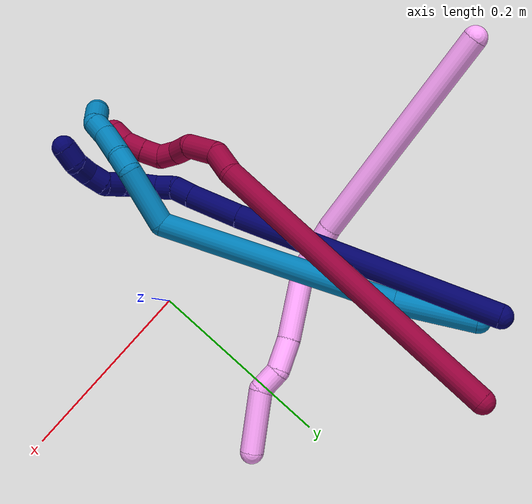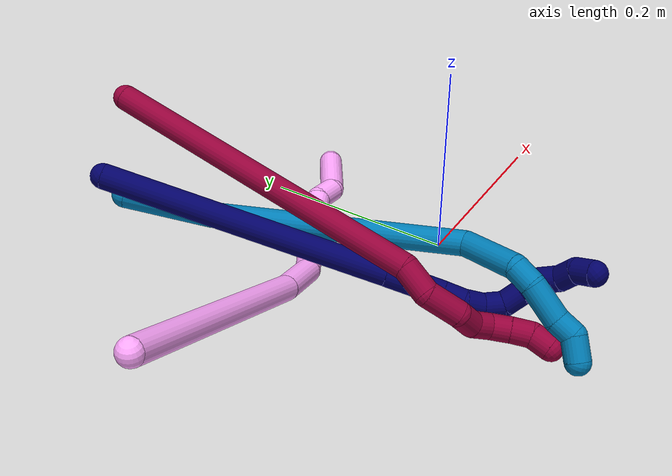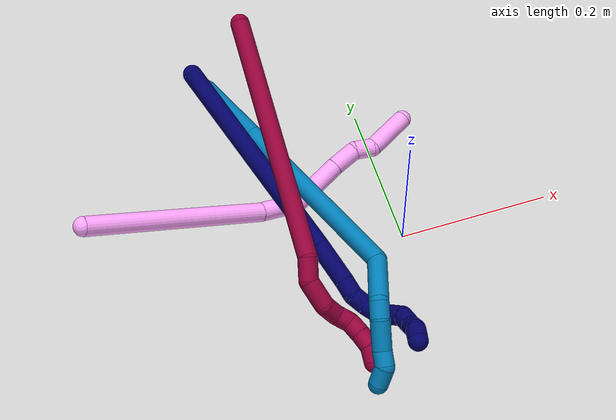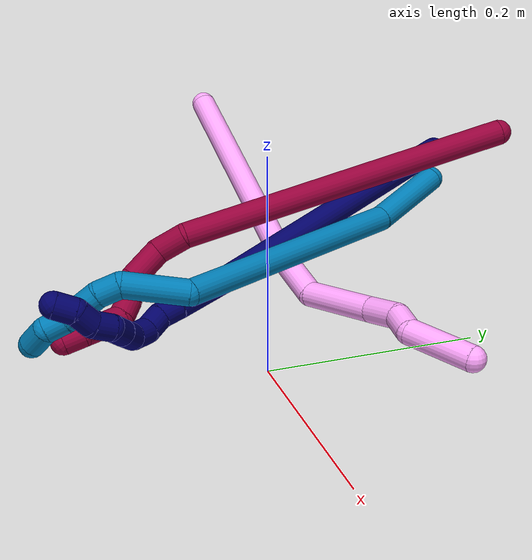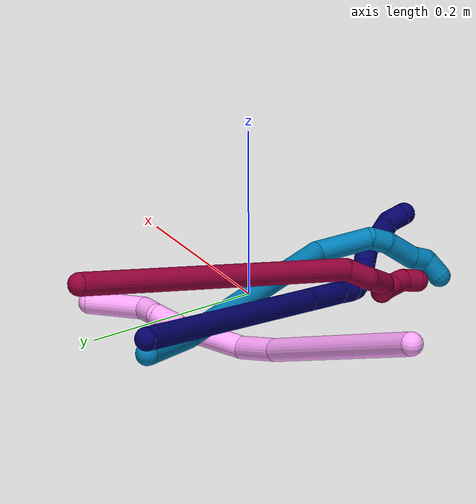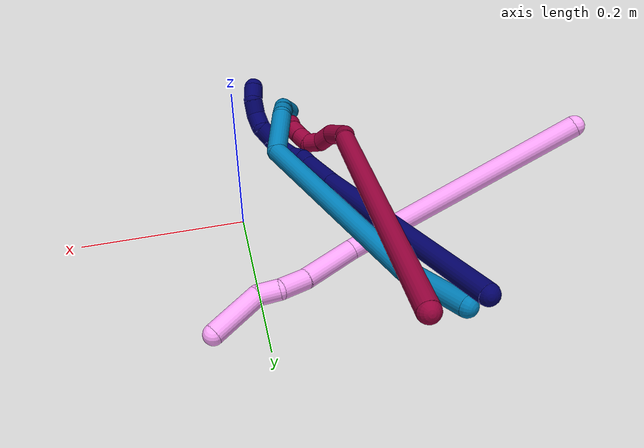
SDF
<sdf version="1.7">
 <world name="default">
  <model name="4">
   <static>0</static>
   <link name="4">
    <collision name="collision-cylinder-e_1_1_4">
     <pose>0.074689 0.077405 0.055965 -0.94479 0.663632 -0.348551</pose>
     <geometry><cylinder><radius>0.0125</radius><length>0.242504</length></cylinder></geometry>
     <surface>
      <friction><ode><mu>1.16</mu><mu2>1.16</mu2><slip1>0</slip1><slip2>0</slip2></ode></friction>
      <contact><ode><kp>1e+06</kp><kd>1</kd><max_vel>0</max_vel><min_depth>0.001</min_depth></ode></contact>
     </surface>
    </collision>
    <visual name="visual-cylinder-e_1_1_4">
     <pose>0.074689 0.077405 0.055965 -0.94479 0.663632 -0.348551</pose>
     <geometry><cylinder><radius>0.0125</radius><length>0.242504</length></cylinder></geometry>
     <material><ambient>1 0.65098 0.996078 1</ambient></material>
    </visual>
    <collision name="collision-cylinder-e_2_4_5">
     <pose>0.169036 0.171226 0.1219 -1.02501 0.797028 -0.465226</pose>
     <geometry><cylinder><radius>0.0125</radius><length>0.054966</length></cylinder></geometry>
     <surface>
      <friction><ode><mu>1.16</mu><mu2>1.16</mu2><slip1>0</slip1><slip2>0</slip2></ode></friction>
      <contact><ode><kp>1e+06</kp><kd>1</kd><max_vel>0</max_vel><min_depth>0.001</min_depth></ode></contact>
     </surface>
    </collision>
    <visual name="visual-cylinder-e_2_4_5">
     <pose>0.169036 0.171226 0.1219 -1.02501 0.797028 -0.465226</pose>
     <geometry><cylinder><radius>0.0125</radius><length>0.054966</length></cylinder></geometry>
     <material><ambient>1 0.65098 0.996078 1</ambient></material>
    </visual>
    <collision name="collision-cylinder-e_3_5_6">
     <pose>0.223466 0.200692 0.130414 -1.68186 1.20971 -1.31571</pose>
     <geometry><cylinder><radius>0.0125</radius><length>0.074337</length></cylinder></geometry>
     <surface>
      <friction><ode><mu>1.16</mu><mu2>1.16</mu2><slip1>0</slip1><slip2>0</slip2></ode></friction>
      <contact><ode><kp>1e+06</kp><kd>1</kd><max_vel>0</max_vel><min_depth>0.001</min_depth></ode></contact>
     </surface>
    </collision>
    <visual name="visual-cylinder-e_3_5_6">
     <pose>0.223466 0.200692 0.130414 -1.68186 1.20971 -1.31571</pose>
     <geometry><cylinder><radius>0.0125</radius><length>0.074337</length></cylinder></geometry>
     <material><ambient>1 0.65098 0.996078 1</ambient></material>
    </visual>
    <collision name="collision-cylinder-e_4_6_7">
     <pose>0.27349 0.221938 0.126818 -1.82628 1.06387 -1.30224</pose>
     <geometry><cylinder><radius>0.0125</radius><length>0.034894</length></cylinder></geometry>
     <surface>
      <friction><ode><mu>1.16</mu><mu2>1.16</mu2><slip1>0</slip1><slip2>0</slip2></ode></friction>
      <contact><ode><kp>1e+06</kp><kd>1</kd><max_vel>0</max_vel><min_depth>0.001</min_depth></ode></contact>
     </surface>
    </collision>
    <visual name="visual-cylinder-e_4_6_7">
     <pose>0.27349 0.221938 0.126818 -1.82628 1.06387 -1.30224</pose>
     <geometry><cylinder><radius>0.0125</radius><length>0.034894</length></cylinder></geometry>
     <material><ambient>1 0.65098 0.996078 1</ambient></material>
    </visual>
    <collision name="collision-cylinder-e_5_7_8">
     <pose>0.296792 0.240238 0.127063 -1.33891 0.659407 -0.528918</pose>
     <geometry><cylinder><radius>0.0125</radius><length>0.026275</length></cylinder></geometry>
     <surface>
      <friction><ode><mu>1.16</mu><mu2>1.16</mu2><slip1>0</slip1><slip2>0</slip2></ode></friction>
      <contact><ode><kp>1e+06</kp><kd>1</kd><max_vel>0</max_vel><min_depth>0.001</min_depth></ode></contact>
     </surface>
    </collision>
    <visual name="visual-cylinder-e_5_7_8">
     <pose>0.296792 0.240238 0.127063 -1.33891 0.659407 -0.528918</pose>
     <geometry><cylinder><radius>0.0125</radius><length>0.026275</length></cylinder></geometry>
     <material><ambient>1 0.65098 0.996078 1</ambient></material>
    </visual>
    <collision name="collision-cylinder-e_6_8_2">
     <pose>0.336635 0.259761 0.134297 -1.09538 1.24922 -0.828502</pose>
     <geometry><cylinder><radius>0.0125</radius><length>0.067024</length></cylinder></geometry>
     <surface>
      <friction><ode><mu>1.16</mu><mu2>1.16</mu2><slip1>0</slip1><slip2>0</slip2></ode></friction>
      <contact><ode><kp>1e+06</kp><kd>1</kd><max_vel>0</max_vel><min_depth>0.001</min_depth></ode></contact>
     </surface>
    </collision>
    <visual name="visual-cylinder-e_6_8_2">
     <pose>0.336635 0.259761 0.134297 -1.09538 1.24922 -0.828502</pose>
     <geometry><cylinder><radius>0.0125</radius><length>0.067024</length></cylinder></geometry>
     <material><ambient>1 0.65098 0.996078 1</ambient></material>
    </visual>
    <collision name="collision-sphere-2">
     <pose>0.368429 0.269179 0.139146 0 -0 0</pose>
     <geometry><sphere><radius>0.0125</radius></sphere></geometry>
     <surface>
      <friction><ode><mu>1.16</mu><mu2>1.16</mu2><slip1>0</slip1><slip2>0</slip2></ode></friction>
      <contact><ode><kp>1e+06</kp><kd>1</kd><max_vel>0</max_vel><min_depth>0.001</min_depth></ode></contact>
     </surface>
    </collision>
    <visual name="visual-sphere-2">
     <pose>0.368429 0.269179 0.139146 0 -0 0</pose>
     <geometry><sphere><radius>0.0125</radius></sphere></geometry>
     <material><ambient>1 0.65098 0.996078 1</ambient></material>
    </visual>
    <collision name="collision-sphere-4">
     <pose>0.149378 0.15481 0.11193 0 -0 0</pose>
     <geometry><sphere><radius>0.0125</radius></sphere></geometry>
     <surface>
      <friction><ode><mu>1.16</mu><mu2>1.16</mu2><slip1>0</slip1><slip2>0</slip2></ode></friction>
      <contact><ode><kp>1e+06</kp><kd>1</kd><max_vel>0</max_vel><min_depth>0.001</min_depth></ode></contact>
     </surface>
    </collision>
    <visual name="visual-sphere-4">
     <pose>0.149378 0.15481 0.11193 0 -0 0</pose>
     <geometry><sphere><radius>0.0125</radius></sphere></geometry>
     <material><ambient>1 0.65098 0.996078 1</ambient></material>
    </visual>
    <collision name="collision-sphere-1">
     <geometry><sphere><radius>0.0125</radius></sphere></geometry>
     <surface>
      <friction><ode><mu>1.16</mu><mu2>1.16</mu2><slip1>0</slip1><slip2>0</slip2></ode></friction>
      <contact><ode><kp>1e+06</kp><kd>1</kd><max_vel>0</max_vel><min_depth>0.001</min_depth></ode></contact>
     </surface>
    </collision>
    <visual name="visual-sphere-1">
     <geometry><sphere><radius>0.0125</radius></sphere></geometry>
     <material><ambient>1 0.65098 0.996078 1</ambient></material>
    </visual>
    <collision name="collision-sphere-8">
     <pose>0.30484 0.250344 0.129449 0 -0 0</pose>
     <geometry><sphere><radius>0.0125</radius></sphere></geometry>
     <surface>
      <friction><ode><mu>1.16</mu><mu2>1.16</mu2><slip1>0</slip1><slip2>0</slip2></ode></friction>
      <contact><ode><kp>1e+06</kp><kd>1</kd><max_vel>0</max_vel><min_depth>0.001</min_depth></ode></contact>
     </surface>
    </collision>
    <visual name="visual-sphere-8">
     <pose>0.30484 0.250344 0.129449 0 -0 0</pose>
     <geometry><sphere><radius>0.0125</radius></sphere></geometry>
     <material><ambient>1 0.65098 0.996078 1</ambient></material>
    </visual>
    <collision name="collision-sphere-5">
     <pose>0.188694 0.187642 0.131869 0 -0 0</pose>
     <geometry><sphere><radius>0.0125</radius></sphere></geometry>
     <surface>
      <friction><ode><mu>1.16</mu><mu2>1.16</mu2><slip1>0</slip1><slip2>0</slip2></ode></friction>
      <contact><ode><kp>1e+06</kp><kd>1</kd><max_vel>0</max_vel><min_depth>0.001</min_depth></ode></contact>
     </surface>
    </collision>
    <visual name="visual-sphere-5">
     <pose>0.188694 0.187642 0.131869 0 -0 0</pose>
     <geometry><sphere><radius>0.0125</radius></sphere></geometry>
     <material><ambient>1 0.65098 0.996078 1</ambient></material>
    </visual>
    <collision name="collision-sphere-6">
     <pose>0.258238 0.213742 0.128958 0 -0 0</pose>
     <geometry><sphere><radius>0.0125</radius></sphere></geometry>
     <surface>
      <friction><ode><mu>1.16</mu><mu2>1.16</mu2><slip1>0</slip1><slip2>0</slip2></ode></friction>
      <contact><ode><kp>1e+06</kp><kd>1</kd><max_vel>0</max_vel><min_depth>0.001</min_depth></ode></contact>
     </surface>
    </collision>
    <visual name="visual-sphere-6">
     <pose>0.258238 0.213742 0.128958 0 -0 0</pose>
     <geometry><sphere><radius>0.0125</radius></sphere></geometry>
     <material><ambient>1 0.65098 0.996078 1</ambient></material>
    </visual>
    <collision name="collision-sphere-7">
     <pose>0.288743 0.230133 0.124677 0 -0 0</pose>
     <geometry><sphere><radius>0.0125</radius></sphere></geometry>
     <surface>
      <friction><ode><mu>1.16</mu><mu2>1.16</mu2><slip1>0</slip1><slip2>0</slip2></ode></friction>
      <contact><ode><kp>1e+06</kp><kd>1</kd><max_vel>0</max_vel><min_depth>0.001</min_depth></ode></contact>
     </surface>
    </collision>
    <visual name="visual-sphere-7">
     <pose>0.288743 0.230133 0.124677 0 -0 0</pose>
     <geometry><sphere><radius>0.0125</radius></sphere></geometry>
     <material><ambient>1 0.65098 0.996078 1</ambient></material>
    </visual>
    <inertial>
     <pose>0.167839 0.149136 0.093463 0 -0 0</pose>
     <mass>0.5</mass>
     <inertia>
      <ixx>0.000588</ixx>
      <ixy>0</ixy>
      <ixz>0</ixz>
      <iyy>0.00061</iyy>
      <iyz>0</iyz>
      <izz>-0.001605</izz>
     </inertia>
    </inertial>
   </link>
   <pose>-0.388311 0.057595 0.132475 3.11533 -0.030932 0.881464</pose>
  </model>
  <model name="7">
   <static>0</static>
   <link name="7">
    <collision name="collision-cylinder-e_1_1_4">
     <pose>0.05725 -0.05577 -0.116828 2.69621 0.416375 1.50138</pose>
     <geometry><cylinder><radius>0.0125</radius><length>0.283101</length></cylinder></geometry>
     <surface>
      <friction><ode><mu>1.16</mu><mu2>1.16</mu2><slip1>0</slip1><slip2>0</slip2></ode></friction>
      <contact><ode><kp>1e+06</kp><kd>1</kd><max_vel>0</max_vel><min_depth>0.001</min_depth></ode></contact>
     </surface>
    </collision>
    <visual name="visual-cylinder-e_1_1_4">
     <pose>0.05725 -0.05577 -0.116828 2.69621 0.416375 1.50138</pose>
     <geometry><cylinder><radius>0.0125</radius><length>0.283101</length></cylinder></geometry>
     <material><ambient>0.003922 0 0.403922 1</ambient></material>
    </visual>
    <collision name="collision-cylinder-e_2_4_5">
     <pose>0.124844 -0.123163 -0.256998 2.6796 0.377647 1.36465</pose>
     <geometry><cylinder><radius>0.0125</radius><length>0.056105</length></cylinder></geometry>
     <surface>
      <friction><ode><mu>1.16</mu><mu2>1.16</mu2><slip1>0</slip1><slip2>0</slip2></ode></friction>
      <contact><ode><kp>1e+06</kp><kd>1</kd><max_vel>0</max_vel><min_depth>0.001</min_depth></ode></contact>
     </surface>
    </collision>
    <visual name="visual-cylinder-e_2_4_5">
     <pose>0.124844 -0.123163 -0.256998 2.6796 0.377647 1.36465</pose>
     <geometry><cylinder><radius>0.0125</radius><length>0.056105</length></cylinder></geometry>
     <material><ambient>0.003922 0 0.403922 1</ambient></material>
    </visual>
    <collision name="collision-cylinder-e_3_5_6">
     <pose>0.138445 -0.139064 -0.289193 2.69143 0.319867 1.22752</pose>
     <geometry><cylinder><radius>0.0125</radius><length>0.020717</length></cylinder></geometry>
     <surface>
      <friction><ode><mu>1.16</mu><mu2>1.16</mu2><slip1>0</slip1><slip2>0</slip2></ode></friction>
      <contact><ode><kp>1e+06</kp><kd>1</kd><max_vel>0</max_vel><min_depth>0.001</min_depth></ode></contact>
     </surface>
    </collision>
    <visual name="visual-cylinder-e_3_5_6">
     <pose>0.138445 -0.139064 -0.289193 2.69143 0.319867 1.22752</pose>
     <geometry><cylinder><radius>0.0125</radius><length>0.020717</length></cylinder></geometry>
     <material><ambient>0.003922 0 0.403922 1</ambient></material>
    </visual>
    <collision name="collision-cylinder-e_4_6_7">
     <pose>0.148319 -0.145993 -0.305114 2.7828 0.719785 2.24339</pose>
     <geometry><cylinder><radius>0.0125</radius><length>0.020076</length></cylinder></geometry>
     <surface>
      <friction><ode><mu>1.16</mu><mu2>1.16</mu2><slip1>0</slip1><slip2>0</slip2></ode></friction>
      <contact><ode><kp>1e+06</kp><kd>1</kd><max_vel>0</max_vel><min_depth>0.001</min_depth></ode></contact>
     </surface>
    </collision>
    <visual name="visual-cylinder-e_4_6_7">
     <pose>0.148319 -0.145993 -0.305114 2.7828 0.719785 2.24339</pose>
     <geometry><cylinder><radius>0.0125</radius><length>0.020076</length></cylinder></geometry>
     <material><ambient>0.003922 0 0.403922 1</ambient></material>
    </visual>
    <collision name="collision-cylinder-e_5_7_8">
     <pose>0.16066 -0.154928 -0.31745 2.26849 0.609314 1.18605</pose>
     <geometry><cylinder><radius>0.0125</radius><length>0.020001</length></cylinder></geometry>
     <surface>
      <friction><ode><mu>1.16</mu><mu2>1.16</mu2><slip1>0</slip1><slip2>0</slip2></ode></friction>
      <contact><ode><kp>1e+06</kp><kd>1</kd><max_vel>0</max_vel><min_depth>0.001</min_depth></ode></contact>
     </surface>
    </collision>
    <visual name="visual-cylinder-e_5_7_8">
     <pose>0.16066 -0.154928 -0.31745 2.26849 0.609314 1.18605</pose>
     <geometry><cylinder><radius>0.0125</radius><length>0.020001</length></cylinder></geometry>
     <material><ambient>0.003922 0 0.403922 1</ambient></material>
    </visual>
    <collision name="collision-cylinder-e_6_8_9">
     <pose>0.171007 -0.170067 -0.323184 1.62338 0.480707 0.505605</pose>
     <geometry><cylinder><radius>0.0125</radius><length>0.02</length></cylinder></geometry>
     <surface>
      <friction><ode><mu>1.16</mu><mu2>1.16</mu2><slip1>0</slip1><slip2>0</slip2></ode></friction>
      <contact><ode><kp>1e+06</kp><kd>1</kd><max_vel>0</max_vel><min_depth>0.001</min_depth></ode></contact>
     </surface>
    </collision>
    <visual name="visual-cylinder-e_6_8_9">
     <pose>0.171007 -0.170067 -0.323184 1.62338 0.480707 0.505605</pose>
     <geometry><cylinder><radius>0.0125</radius><length>0.02</length></cylinder></geometry>
     <material><ambient>0.003922 0 0.403922 1</ambient></material>
    </visual>
    <collision name="collision-cylinder-e_7_9_10">
     <pose>0.179976 -0.187921 -0.324018 1.61165 0.449453 0.467538</pose>
     <geometry><cylinder><radius>0.0125</radius><length>0.02</length></cylinder></geometry>
     <surface>
      <friction><ode><mu>1.16</mu><mu2>1.16</mu2><slip1>0</slip1><slip2>0</slip2></ode></friction>
      <contact><ode><kp>1e+06</kp><kd>1</kd><max_vel>0</max_vel><min_depth>0.001</min_depth></ode></contact>
     </surface>
    </collision>
    <visual name="visual-cylinder-e_7_9_10">
     <pose>0.179976 -0.187921 -0.324018 1.61165 0.449453 0.467538</pose>
     <geometry><cylinder><radius>0.0125</radius><length>0.02</length></cylinder></geometry>
     <material><ambient>0.003922 0 0.403922 1</ambient></material>
    </visual>
    <collision name="collision-cylinder-e_8_10_11">
     <pose>0.185414 -0.205663 -0.329116 2.06672 0.109567 0.18352</pose>
     <geometry><cylinder><radius>0.0125</radius><length>0.02</length></cylinder></geometry>
     <surface>
      <friction><ode><mu>1.16</mu><mu2>1.16</mu2><slip1>0</slip1><slip2>0</slip2></ode></friction>
      <contact><ode><kp>1e+06</kp><kd>1</kd><max_vel>0</max_vel><min_depth>0.001</min_depth></ode></contact>
     </surface>
    </collision>
    <visual name="visual-cylinder-e_8_10_11">
     <pose>0.185414 -0.205663 -0.329116 2.06672 0.109567 0.18352</pose>
     <geometry><cylinder><radius>0.0125</radius><length>0.02</length></cylinder></geometry>
     <material><ambient>0.003922 0 0.403922 1</ambient></material>
    </visual>
    <collision name="collision-cylinder-e_9_11_12">
     <pose>0.18553 -0.224295 -0.33496 1.68301 -0.097867 -0.109493</pose>
     <geometry><cylinder><radius>0.0125</radius><length>0.02</length></cylinder></geometry>
     <surface>
      <friction><ode><mu>1.16</mu><mu2>1.16</mu2><slip1>0</slip1><slip2>0</slip2></ode></friction>
      <contact><ode><kp>1e+06</kp><kd>1</kd><max_vel>0</max_vel><min_depth>0.001</min_depth></ode></contact>
     </surface>
    </collision>
    <visual name="visual-cylinder-e_9_11_12">
     <pose>0.18553 -0.224295 -0.33496 1.68301 -0.097867 -0.109493</pose>
     <geometry><cylinder><radius>0.0125</radius><length>0.02</length></cylinder></geometry>
     <material><ambient>0.003922 0 0.403922 1</ambient></material>
    </visual>
    <collision name="collision-cylinder-e_10_12_2">
     <pose>0.182075 -0.242117 -0.341636 2.18221 -0.250482 -0.474894</pose>
     <geometry><cylinder><radius>0.0125</radius><length>0.02</length></cylinder></geometry>
     <surface>
      <friction><ode><mu>1.16</mu><mu2>1.16</mu2><slip1>0</slip1><slip2>0</slip2></ode></friction>
      <contact><ode><kp>1e+06</kp><kd>1</kd><max_vel>0</max_vel><min_depth>0.001</min_depth></ode></contact>
     </surface>
    </collision>
    <visual name="visual-cylinder-e_10_12_2">
     <pose>0.182075 -0.242117 -0.341636 2.18221 -0.250482 -0.474894</pose>
     <geometry><cylinder><radius>0.0125</radius><length>0.02</length></cylinder></geometry>
     <material><ambient>0.003922 0 0.403922 1</ambient></material>
    </visual>
    <collision name="collision-sphere-2">
     <pose>0.179596 -0.25005 -0.347197 0 -0 0</pose>
     <geometry><sphere><radius>0.0125</radius></sphere></geometry>
     <surface>
      <friction><ode><mu>1.16</mu><mu2>1.16</mu2><slip1>0</slip1><slip2>0</slip2></ode></friction>
      <contact><ode><kp>1e+06</kp><kd>1</kd><max_vel>0</max_vel><min_depth>0.001</min_depth></ode></contact>
     </surface>
    </collision>
    <visual name="visual-sphere-2">
     <pose>0.179596 -0.25005 -0.347197 0 -0 0</pose>
     <geometry><sphere><radius>0.0125</radius></sphere></geometry>
     <material><ambient>0.003922 0 0.403922 1</ambient></material>
    </visual>
    <collision name="collision-sphere-12">
     <pose>0.184553 -0.234185 -0.336075 0 -0 0</pose>
     <geometry><sphere><radius>0.0125</radius></sphere></geometry>
     <surface>
      <friction><ode><mu>1.16</mu><mu2>1.16</mu2><slip1>0</slip1><slip2>0</slip2></ode></friction>
      <contact><ode><kp>1e+06</kp><kd>1</kd><max_vel>0</max_vel><min_depth>0.001</min_depth></ode></contact>
     </surface>
    </collision>
    <visual name="visual-sphere-12">
     <pose>0.184553 -0.234185 -0.336075 0 -0 0</pose>
     <geometry><sphere><radius>0.0125</radius></sphere></geometry>
     <material><ambient>0.003922 0 0.403922 1</ambient></material>
    </visual>
    <collision name="collision-sphere-11">
     <pose>0.186508 -0.214405 -0.333846 0 -0 0</pose>
     <geometry><sphere><radius>0.0125</radius></sphere></geometry>
     <surface>
      <friction><ode><mu>1.16</mu><mu2>1.16</mu2><slip1>0</slip1><slip2>0</slip2></ode></friction>
      <contact><ode><kp>1e+06</kp><kd>1</kd><max_vel>0</max_vel><min_depth>0.001</min_depth></ode></contact>
     </surface>
    </collision>
    <visual name="visual-sphere-11">
     <pose>0.186508 -0.214405 -0.333846 0 -0 0</pose>
     <geometry><sphere><radius>0.0125</radius></sphere></geometry>
     <material><ambient>0.003922 0 0.403922 1</ambient></material>
    </visual>
    <collision name="collision-sphere-10">
     <pose>0.184321 -0.19692 -0.324386 0 -0 0</pose>
     <geometry><sphere><radius>0.0125</radius></sphere></geometry>
     <surface>
      <friction><ode><mu>1.16</mu><mu2>1.16</mu2><slip1>0</slip1><slip2>0</slip2></ode></friction>
      <contact><ode><kp>1e+06</kp><kd>1</kd><max_vel>0</max_vel><min_depth>0.001</min_depth></ode></contact>
     </surface>
    </collision>
    <visual name="visual-sphere-10">
     <pose>0.184321 -0.19692 -0.324386 0 -0 0</pose>
     <geometry><sphere><radius>0.0125</radius></sphere></geometry>
     <material><ambient>0.003922 0 0.403922 1</ambient></material>
    </visual>
    <collision name="collision-sphere-9">
     <pose>0.175631 -0.178922 -0.32365 0 -0 0</pose>
     <geometry><sphere><radius>0.0125</radius></sphere></geometry>
     <surface>
      <friction><ode><mu>1.16</mu><mu2>1.16</mu2><slip1>0</slip1><slip2>0</slip2></ode></friction>
      <contact><ode><kp>1e+06</kp><kd>1</kd><max_vel>0</max_vel><min_depth>0.001</min_depth></ode></contact>
     </surface>
    </collision>
    <visual name="visual-sphere-9">
     <pose>0.175631 -0.178922 -0.32365 0 -0 0</pose>
     <geometry><sphere><radius>0.0125</radius></sphere></geometry>
     <material><ambient>0.003922 0 0.403922 1</ambient></material>
    </visual>
    <collision name="collision-sphere-4">
     <pose>0.1145 -0.11154 -0.233655 0 -0 0</pose>
     <geometry><sphere><radius>0.0125</radius></sphere></geometry>
     <surface>
      <friction><ode><mu>1.16</mu><mu2>1.16</mu2><slip1>0</slip1><slip2>0</slip2></ode></friction>
      <contact><ode><kp>1e+06</kp><kd>1</kd><max_vel>0</max_vel><min_depth>0.001</min_depth></ode></contact>
     </surface>
    </collision>
    <visual name="visual-sphere-4">
     <pose>0.1145 -0.11154 -0.233655 0 -0 0</pose>
     <geometry><sphere><radius>0.0125</radius></sphere></geometry>
     <material><ambient>0.003922 0 0.403922 1</ambient></material>
    </visual>
    <collision name="collision-sphere-1">
     <geometry><sphere><radius>0.0125</radius></sphere></geometry>
     <surface>
      <friction><ode><mu>1.16</mu><mu2>1.16</mu2><slip1>0</slip1><slip2>0</slip2></ode></friction>
      <contact><ode><kp>1e+06</kp><kd>1</kd><max_vel>0</max_vel><min_depth>0.001</min_depth></ode></contact>
     </surface>
    </collision>
    <visual name="visual-sphere-1">
     <geometry><sphere><radius>0.0125</radius></sphere></geometry>
     <material><ambient>0.003922 0 0.403922 1</ambient></material>
    </visual>
    <collision name="collision-sphere-8">
     <pose>0.166383 -0.161213 -0.322718 0 -0 0</pose>
     <geometry><sphere><radius>0.0125</radius></sphere></geometry>
     <surface>
      <friction><ode><mu>1.16</mu><mu2>1.16</mu2><slip1>0</slip1><slip2>0</slip2></ode></friction>
      <contact><ode><kp>1e+06</kp><kd>1</kd><max_vel>0</max_vel><min_depth>0.001</min_depth></ode></contact>
     </surface>
    </collision>
    <visual name="visual-sphere-8">
     <pose>0.166383 -0.161213 -0.322718 0 -0 0</pose>
     <geometry><sphere><radius>0.0125</radius></sphere></geometry>
     <material><ambient>0.003922 0 0.403922 1</ambient></material>
    </visual>
    <collision name="collision-sphere-5">
     <pose>0.135188 -0.134786 -0.28034 0 -0 0</pose>
     <geometry><sphere><radius>0.0125</radius></sphere></geometry>
     <surface>
      <friction><ode><mu>1.16</mu><mu2>1.16</mu2><slip1>0</slip1><slip2>0</slip2></ode></friction>
      <contact><ode><kp>1e+06</kp><kd>1</kd><max_vel>0</max_vel><min_depth>0.001</min_depth></ode></contact>
     </surface>
    </collision>
    <visual name="visual-sphere-5">
     <pose>0.135188 -0.134786 -0.28034 0 -0 0</pose>
     <geometry><sphere><radius>0.0125</radius></sphere></geometry>
     <material><ambient>0.003922 0 0.403922 1</ambient></material>
    </visual>
    <collision name="collision-sphere-6">
     <pose>0.141702 -0.143343 -0.298046 0 -0 0</pose>
     <geometry><sphere><radius>0.0125</radius></sphere></geometry>
     <surface>
      <friction><ode><mu>1.16</mu><mu2>1.16</mu2><slip1>0</slip1><slip2>0</slip2></ode></friction>
      <contact><ode><kp>1e+06</kp><kd>1</kd><max_vel>0</max_vel><min_depth>0.001</min_depth></ode></contact>
     </surface>
    </collision>
    <visual name="visual-sphere-6">
     <pose>0.141702 -0.143343 -0.298046 0 -0 0</pose>
     <geometry><sphere><radius>0.0125</radius></sphere></geometry>
     <material><ambient>0.003922 0 0.403922 1</ambient></material>
    </visual>
    <collision name="collision-sphere-7">
     <pose>0.154937 -0.148644 -0.312181 0 -0 0</pose>
     <geometry><sphere><radius>0.0125</radius></sphere></geometry>
     <surface>
      <friction><ode><mu>1.16</mu><mu2>1.16</mu2><slip1>0</slip1><slip2>0</slip2></ode></friction>
      <contact><ode><kp>1e+06</kp><kd>1</kd><max_vel>0</max_vel><min_depth>0.001</min_depth></ode></contact>
     </surface>
    </collision>
    <visual name="visual-sphere-7">
     <pose>0.154937 -0.148644 -0.312181 0 -0 0</pose>
     <geometry><sphere><radius>0.0125</radius></sphere></geometry>
     <material><ambient>0.003922 0 0.403922 1</ambient></material>
    </visual>
    <inertial>
     <pose>0.100702 -0.104421 -0.198034 0 -0 0</pose>
     <mass>0.5</mass>
     <inertia>
      <ixx>0.001899</ixx>
      <ixy>0</ixy>
      <ixz>0</ixz>
      <iyy>0.001946</iyy>
      <iyz>0</iyz>
      <izz>-4.1e-05</izz>
     </inertia>
    </inertial>
   </link>
   <pose>-0.207622 0.255254 0.113687 -0.939134 0.218856 -0.03137</pose>
  </model>
  <model name="8">
   <static>0</static>
   <link name="8">
    <collision name="collision-cylinder-e_1_1_4">
     <pose>-0.027391 -0.06868 -0.148016 2.70715 -0.166314 -0.722191</pose>
     <geometry><cylinder><radius>0.0125</radius><length>0.330914</length></cylinder></geometry>
     <surface>
      <friction><ode><mu>1.16</mu><mu2>1.16</mu2><slip1>0</slip1><slip2>0</slip2></ode></friction>
      <contact><ode><kp>1e+06</kp><kd>1</kd><max_vel>0</max_vel><min_depth>0.001</min_depth></ode></contact>
     </surface>
    </collision>
    <visual name="visual-cylinder-e_1_1_4">
     <pose>-0.027391 -0.06868 -0.148016 2.70715 -0.166314 -0.722191</pose>
     <geometry><cylinder><radius>0.0125</radius><length>0.330914</length></cylinder></geometry>
     <material><ambient>0.584314 0 0.227451 1</ambient></material>
    </visual>
    <collision name="collision-cylinder-e_2_4_5">
     <pose>-0.057906 -0.138242 -0.310696 3.08157 -0.209483 -2.5853</pose>
     <geometry><cylinder><radius>0.0125</radius><length>0.030037</length></cylinder></geometry>
     <surface>
      <friction><ode><mu>1.16</mu><mu2>1.16</mu2><slip1>0</slip1><slip2>0</slip2></ode></friction>
      <contact><ode><kp>1e+06</kp><kd>1</kd><max_vel>0</max_vel><min_depth>0.001</min_depth></ode></contact>
     </surface>
    </collision>
    <visual name="visual-cylinder-e_2_4_5">
     <pose>-0.057906 -0.138242 -0.310696 3.08157 -0.209483 -2.5853</pose>
     <geometry><cylinder><radius>0.0125</radius><length>0.030037</length></cylinder></geometry>
     <material><ambient>0.584314 0 0.227451 1</ambient></material>
    </visual>
    <collision name="collision-cylinder-e_3_5_6">
     <pose>-0.055715 -0.142911 -0.341961 2.91725 0.30251 1.8687</pose>
     <geometry><cylinder><radius>0.0125</radius><length>0.035675</length></cylinder></geometry>
     <surface>
      <friction><ode><mu>1.16</mu><mu2>1.16</mu2><slip1>0</slip1><slip2>0</slip2></ode></friction>
      <contact><ode><kp>1e+06</kp><kd>1</kd><max_vel>0</max_vel><min_depth>0.001</min_depth></ode></contact>
     </surface>
    </collision>
    <visual name="visual-cylinder-e_3_5_6">
     <pose>-0.055715 -0.142911 -0.341961 2.91725 0.30251 1.8687</pose>
     <geometry><cylinder><radius>0.0125</radius><length>0.035675</length></cylinder></geometry>
     <material><ambient>0.584314 0 0.227451 1</ambient></material>
    </visual>
    <collision name="collision-cylinder-e_4_6_7">
     <pose>-0.042489 -0.145341 -0.366978 -2.98155 0.748102 -2.73856</pose>
     <geometry><cylinder><radius>0.0125</radius><length>0.023262</length></cylinder></geometry>
     <surface>
      <friction><ode><mu>1.16</mu><mu2>1.16</mu2><slip1>0</slip1><slip2>0</slip2></ode></friction>
      <contact><ode><kp>1e+06</kp><kd>1</kd><max_vel>0</max_vel><min_depth>0.001</min_depth></ode></contact>
     </surface>
    </collision>
    <visual name="visual-cylinder-e_4_6_7">
     <pose>-0.042489 -0.145341 -0.366978 -2.98155 0.748102 -2.73856</pose>
     <geometry><cylinder><radius>0.0125</radius><length>0.023262</length></cylinder></geometry>
     <material><ambient>0.584314 0 0.227451 1</ambient></material>
    </visual>
    <collision name="collision-cylinder-e_5_7_8">
     <pose>-0.027705 -0.147273 -0.381923 2.67467 0.754402 2.06039</pose>
     <geometry><cylinder><radius>0.0125</radius><length>0.020066</length></cylinder></geometry>
     <surface>
      <friction><ode><mu>1.16</mu><mu2>1.16</mu2><slip1>0</slip1><slip2>0</slip2></ode></friction>
      <contact><ode><kp>1e+06</kp><kd>1</kd><max_vel>0</max_vel><min_depth>0.001</min_depth></ode></contact>
     </surface>
    </collision>
    <visual name="visual-cylinder-e_5_7_8">
     <pose>-0.027705 -0.147273 -0.381923 2.67467 0.754402 2.06039</pose>
     <geometry><cylinder><radius>0.0125</radius><length>0.020066</length></cylinder></geometry>
     <material><ambient>0.584314 0 0.227451 1</ambient></material>
    </visual>
    <collision name="collision-cylinder-e_6_8_9">
     <pose>-0.01922 -0.157047 -0.395912 2.42624 0.16187 0.427417</pose>
     <geometry><cylinder><radius>0.0125</radius><length>0.020031</length></cylinder></geometry>
     <surface>
      <friction><ode><mu>1.16</mu><mu2>1.16</mu2><slip1>0</slip1><slip2>0</slip2></ode></friction>
      <contact><ode><kp>1e+06</kp><kd>1</kd><max_vel>0</max_vel><min_depth>0.001</min_depth></ode></contact>
     </surface>
    </collision>
    <visual name="visual-cylinder-e_6_8_9">
     <pose>-0.01922 -0.157047 -0.395912 2.42624 0.16187 0.427417</pose>
     <geometry><cylinder><radius>0.0125</radius><length>0.020031</length></cylinder></geometry>
     <material><ambient>0.584314 0 0.227451 1</ambient></material>
    </visual>
    <collision name="collision-cylinder-e_7_9_10">
     <pose>-0.016648 -0.169732 -0.411161 2.46906 0.095912 0.272897</pose>
     <geometry><cylinder><radius>0.0125</radius><length>0.020003</length></cylinder></geometry>
     <surface>
      <friction><ode><mu>1.16</mu><mu2>1.16</mu2><slip1>0</slip1><slip2>0</slip2></ode></friction>
      <contact><ode><kp>1e+06</kp><kd>1</kd><max_vel>0</max_vel><min_depth>0.001</min_depth></ode></contact>
     </surface>
    </collision>
    <visual name="visual-cylinder-e_7_9_10">
     <pose>-0.016648 -0.169732 -0.411161 2.46906 0.095912 0.272897</pose>
     <geometry><cylinder><radius>0.0125</radius><length>0.020003</length></cylinder></geometry>
     <material><ambient>0.584314 0 0.227451 1</ambient></material>
    </visual>
    <collision name="collision-cylinder-e_8_10_2">
     <pose>-0.017304 -0.179267 -0.428244 2.79734 -0.161951 -0.873496</pose>
     <geometry><cylinder><radius>0.0125</radius><length>0.020012</length></cylinder></geometry>
     <surface>
      <friction><ode><mu>1.16</mu><mu2>1.16</mu2><slip1>0</slip1><slip2>0</slip2></ode></friction>
      <contact><ode><kp>1e+06</kp><kd>1</kd><max_vel>0</max_vel><min_depth>0.001</min_depth></ode></contact>
     </surface>
    </collision>
    <visual name="visual-cylinder-e_8_10_2">
     <pose>-0.017304 -0.179267 -0.428244 2.79734 -0.161951 -0.873496</pose>
     <geometry><cylinder><radius>0.0125</radius><length>0.020012</length></cylinder></geometry>
     <material><ambient>0.584314 0 0.227451 1</ambient></material>
    </visual>
    <collision name="collision-sphere-2">
     <pose>-0.018917 -0.182599 -0.43754 0 -0 0</pose>
     <geometry><sphere><radius>0.0125</radius></sphere></geometry>
     <surface>
      <friction><ode><mu>1.16</mu><mu2>1.16</mu2><slip1>0</slip1><slip2>0</slip2></ode></friction>
      <contact><ode><kp>1e+06</kp><kd>1</kd><max_vel>0</max_vel><min_depth>0.001</min_depth></ode></contact>
     </surface>
    </collision>
    <visual name="visual-sphere-2">
     <pose>-0.018917 -0.182599 -0.43754 0 -0 0</pose>
     <geometry><sphere><radius>0.0125</radius></sphere></geometry>
     <material><ambient>0.584314 0 0.227451 1</ambient></material>
    </visual>
    <collision name="collision-sphere-10">
     <pose>-0.01569 -0.175934 -0.418949 0 -0 0</pose>
     <geometry><sphere><radius>0.0125</radius></sphere></geometry>
     <surface>
      <friction><ode><mu>1.16</mu><mu2>1.16</mu2><slip1>0</slip1><slip2>0</slip2></ode></friction>
      <contact><ode><kp>1e+06</kp><kd>1</kd><max_vel>0</max_vel><min_depth>0.001</min_depth></ode></contact>
     </surface>
    </collision>
    <visual name="visual-sphere-10">
     <pose>-0.01569 -0.175934 -0.418949 0 -0 0</pose>
     <geometry><sphere><radius>0.0125</radius></sphere></geometry>
     <material><ambient>0.584314 0 0.227451 1</ambient></material>
    </visual>
    <collision name="collision-sphere-9">
     <pose>-0.017606 -0.16353 -0.403374 0 -0 0</pose>
     <geometry><sphere><radius>0.0125</radius></sphere></geometry>
     <surface>
      <friction><ode><mu>1.16</mu><mu2>1.16</mu2><slip1>0</slip1><slip2>0</slip2></ode></friction>
      <contact><ode><kp>1e+06</kp><kd>1</kd><max_vel>0</max_vel><min_depth>0.001</min_depth></ode></contact>
     </surface>
    </collision>
    <visual name="visual-sphere-9">
     <pose>-0.017606 -0.16353 -0.403374 0 -0 0</pose>
     <geometry><sphere><radius>0.0125</radius></sphere></geometry>
     <material><ambient>0.584314 0 0.227451 1</ambient></material>
    </visual>
    <collision name="collision-sphere-4">
     <pose>-0.054782 -0.137361 -0.296032 0 -0 0</pose>
     <geometry><sphere><radius>0.0125</radius></sphere></geometry>
     <surface>
      <friction><ode><mu>1.16</mu><mu2>1.16</mu2><slip1>0</slip1><slip2>0</slip2></ode></friction>
      <contact><ode><kp>1e+06</kp><kd>1</kd><max_vel>0</max_vel><min_depth>0.001</min_depth></ode></contact>
     </surface>
    </collision>
    <visual name="visual-sphere-4">
     <pose>-0.054782 -0.137361 -0.296032 0 -0 0</pose>
     <geometry><sphere><radius>0.0125</radius></sphere></geometry>
     <material><ambient>0.584314 0 0.227451 1</ambient></material>
    </visual>
    <collision name="collision-sphere-1">
     <geometry><sphere><radius>0.0125</radius></sphere></geometry>
     <surface>
      <friction><ode><mu>1.16</mu><mu2>1.16</mu2><slip1>0</slip1><slip2>0</slip2></ode></friction>
      <contact><ode><kp>1e+06</kp><kd>1</kd><max_vel>0</max_vel><min_depth>0.001</min_depth></ode></contact>
     </surface>
    </collision>
    <visual name="visual-sphere-1">
     <geometry><sphere><radius>0.0125</radius></sphere></geometry>
     <material><ambient>0.584314 0 0.227451 1</ambient></material>
    </visual>
    <collision name="collision-sphere-8">
     <pose>-0.020834 -0.150564 -0.388451 0 -0 0</pose>
     <geometry><sphere><radius>0.0125</radius></sphere></geometry>
     <surface>
      <friction><ode><mu>1.16</mu><mu2>1.16</mu2><slip1>0</slip1><slip2>0</slip2></ode></friction>
      <contact><ode><kp>1e+06</kp><kd>1</kd><max_vel>0</max_vel><min_depth>0.001</min_depth></ode></contact>
     </surface>
    </collision>
    <visual name="visual-sphere-8">
     <pose>-0.020834 -0.150564 -0.388451 0 -0 0</pose>
     <geometry><sphere><radius>0.0125</radius></sphere></geometry>
     <material><ambient>0.584314 0 0.227451 1</ambient></material>
    </visual>
    <collision name="collision-sphere-5">
     <pose>-0.061029 -0.139123 -0.32536 0 -0 0</pose>
     <geometry><sphere><radius>0.0125</radius></sphere></geometry>
     <surface>
      <friction><ode><mu>1.16</mu><mu2>1.16</mu2><slip1>0</slip1><slip2>0</slip2></ode></friction>
      <contact><ode><kp>1e+06</kp><kd>1</kd><max_vel>0</max_vel><min_depth>0.001</min_depth></ode></contact>
     </surface>
    </collision>
    <visual name="visual-sphere-5">
     <pose>-0.061029 -0.139123 -0.32536 0 -0 0</pose>
     <geometry><sphere><radius>0.0125</radius></sphere></geometry>
     <material><ambient>0.584314 0 0.227451 1</ambient></material>
    </visual>
    <collision name="collision-sphere-6">
     <pose>-0.050401 -0.146699 -0.358561 0 -0 0</pose>
     <geometry><sphere><radius>0.0125</radius></sphere></geometry>
     <surface>
      <friction><ode><mu>1.16</mu><mu2>1.16</mu2><slip1>0</slip1><slip2>0</slip2></ode></friction>
      <contact><ode><kp>1e+06</kp><kd>1</kd><max_vel>0</max_vel><min_depth>0.001</min_depth></ode></contact>
     </surface>
    </collision>
    <visual name="visual-sphere-6">
     <pose>-0.050401 -0.146699 -0.358561 0 -0 0</pose>
     <geometry><sphere><radius>0.0125</radius></sphere></geometry>
     <material><ambient>0.584314 0 0.227451 1</ambient></material>
    </visual>
    <collision name="collision-sphere-7">
     <pose>-0.034577 -0.143982 -0.375394 0 -0 0</pose>
     <geometry><sphere><radius>0.0125</radius></sphere></geometry>
     <surface>
      <friction><ode><mu>1.16</mu><mu2>1.16</mu2><slip1>0</slip1><slip2>0</slip2></ode></friction>
      <contact><ode><kp>1e+06</kp><kd>1</kd><max_vel>0</max_vel><min_depth>0.001</min_depth></ode></contact>
     </surface>
    </collision>
    <visual name="visual-sphere-7">
     <pose>-0.034577 -0.143982 -0.375394 0 -0 0</pose>
     <geometry><sphere><radius>0.0125</radius></sphere></geometry>
     <material><ambient>0.584314 0 0.227451 1</ambient></material>
    </visual>
    <inertial>
     <pose>-0.030799 -0.096885 -0.222875 0 -0 0</pose>
     <mass>0.5</mass>
     <inertia>
      <ixx>0.000266</ixx>
      <ixy>0</ixy>
      <ixz>0</ixz>
      <iyy>-0.003908</iyy>
      <iyz>0</iyz>
      <izz>0.001727</izz>
     </inertia>
    </inertial>
   </link>
   <pose>-0.131459 0.288157 0.151771 -0.838522 0.356495 0.241954</pose>
  </model>
  <model name="9">
   <static>0</static>
   <link name="9">
    <collision name="collision-cylinder-e_1_1_4">
     <pose>-0.000991 -0.003642 -0.042746 3.05661 -0.023096 -0.530426</pose>
     <geometry><cylinder><radius>0.0125</radius><length>0.085825</length></cylinder></geometry>
     <surface>
      <friction><ode><mu>1.16</mu><mu2>1.16</mu2><slip1>0</slip1><slip2>0</slip2></ode></friction>
      <contact><ode><kp>1e+06</kp><kd>1</kd><max_vel>0</max_vel><min_depth>0.001</min_depth></ode></contact>
     </surface>
    </collision>
    <visual name="visual-cylinder-e_1_1_4">
     <pose>-0.000991 -0.003642 -0.042746 3.05661 -0.023096 -0.530426</pose>
     <geometry><cylinder><radius>0.0125</radius><length>0.085825</length></cylinder></geometry>
     <material><ambient>0 0.490196 0.709804 1</ambient></material>
    </visual>
    <collision name="collision-cylinder-e_2_4_5">
     <pose>0.015972 -0.037447 -0.204038 2.89243 0.145738 1.05552</pose>
     <geometry><cylinder><radius>0.0125</radius><length>0.247265</length></cylinder></geometry>
     <surface>
      <friction><ode><mu>1.16</mu><mu2>1.16</mu2><slip1>0</slip1><slip2>0</slip2></ode></friction>
      <contact><ode><kp>1e+06</kp><kd>1</kd><max_vel>0</max_vel><min_depth>0.001</min_depth></ode></contact>
     </surface>
    </collision>
    <visual name="visual-cylinder-e_2_4_5">
     <pose>0.015972 -0.037447 -0.204038 2.89243 0.145738 1.05552</pose>
     <geometry><cylinder><radius>0.0125</radius><length>0.247265</length></cylinder></geometry>
     <material><ambient>0 0.490196 0.709804 1</ambient></material>
    </visual>
    <collision name="collision-cylinder-e_3_5_6">
     <pose>0.034562 -0.093062 -0.340275 2.17828 0.020509 0.039231</pose>
     <geometry><cylinder><radius>0.0125</radius><length>0.062007</length></cylinder></geometry>
     <surface>
      <friction><ode><mu>1.16</mu><mu2>1.16</mu2><slip1>0</slip1><slip2>0</slip2></ode></friction>
      <contact><ode><kp>1e+06</kp><kd>1</kd><max_vel>0</max_vel><min_depth>0.001</min_depth></ode></contact>
     </surface>
    </collision>
    <visual name="visual-cylinder-e_3_5_6">
     <pose>0.034562 -0.093062 -0.340275 2.17828 0.020509 0.039231</pose>
     <geometry><cylinder><radius>0.0125</radius><length>0.062007</length></cylinder></geometry>
     <material><ambient>0 0.490196 0.709804 1</ambient></material>
    </visual>
    <collision name="collision-cylinder-e_4_6_7">
     <pose>0.030276 -0.124986 -0.365819 2.45209 -0.450504 -1.13594</pose>
     <geometry><cylinder><radius>0.0125</radius><length>0.022606</length></cylinder></geometry>
     <surface>
      <friction><ode><mu>1.16</mu><mu2>1.16</mu2><slip1>0</slip1><slip2>0</slip2></ode></friction>
      <contact><ode><kp>1e+06</kp><kd>1</kd><max_vel>0</max_vel><min_depth>0.001</min_depth></ode></contact>
     </surface>
    </collision>
    <visual name="visual-cylinder-e_4_6_7">
     <pose>0.030276 -0.124986 -0.365819 2.45209 -0.450504 -1.13594</pose>
     <geometry><cylinder><radius>0.0125</radius><length>0.022606</length></cylinder></geometry>
     <material><ambient>0 0.490196 0.709804 1</ambient></material>
    </visual>
    <collision name="collision-cylinder-e_5_7_8">
     <pose>0.013332 -0.138762 -0.386502 2.62415 -0.683404 -1.86213</pose>
     <geometry><cylinder><radius>0.0125</radius><length>0.038081</length></cylinder></geometry>
     <surface>
      <friction><ode><mu>1.16</mu><mu2>1.16</mu2><slip1>0</slip1><slip2>0</slip2></ode></friction>
      <contact><ode><kp>1e+06</kp><kd>1</kd><max_vel>0</max_vel><min_depth>0.001</min_depth></ode></contact>
     </surface>
    </collision>
    <visual name="visual-cylinder-e_5_7_8">
     <pose>0.013332 -0.138762 -0.386502 2.62415 -0.683404 -1.86213</pose>
     <geometry><cylinder><radius>0.0125</radius><length>0.038081</length></cylinder></geometry>
     <material><ambient>0 0.490196 0.709804 1</ambient></material>
    </visual>
    <collision name="collision-cylinder-e_6_8_9">
     <pose>-0.002725 -0.151045 -0.407049 2.56847 -0.413964 -1.2383</pose>
     <geometry><cylinder><radius>0.0125</radius><length>0.020059</length></cylinder></geometry>
     <surface>
      <friction><ode><mu>1.16</mu><mu2>1.16</mu2><slip1>0</slip1><slip2>0</slip2></ode></friction>
      <contact><ode><kp>1e+06</kp><kd>1</kd><max_vel>0</max_vel><min_depth>0.001</min_depth></ode></contact>
     </surface>
    </collision>
    <visual name="visual-cylinder-e_6_8_9">
     <pose>-0.002725 -0.151045 -0.407049 2.56847 -0.413964 -1.2383</pose>
     <geometry><cylinder><radius>0.0125</radius><length>0.020059</length></cylinder></geometry>
     <material><ambient>0 0.490196 0.709804 1</ambient></material>
    </visual>
    <collision name="collision-cylinder-e_7_9_2">
     <pose>-0.017295 -0.160724 -0.418342 2.22156 -1.05979 -1.73745</pose>
     <geometry><cylinder><radius>0.0125</radius><length>0.024156</length></cylinder></geometry>
     <surface>
      <friction><ode><mu>1.16</mu><mu2>1.16</mu2><slip1>0</slip1><slip2>0</slip2></ode></friction>
      <contact><ode><kp>1e+06</kp><kd>1</kd><max_vel>0</max_vel><min_depth>0.001</min_depth></ode></contact>
     </surface>
    </collision>
    <visual name="visual-cylinder-e_7_9_2">
     <pose>-0.017295 -0.160724 -0.418342 2.22156 -1.05979 -1.73745</pose>
     <geometry><cylinder><radius>0.0125</radius><length>0.024156</length></cylinder></geometry>
     <material><ambient>0 0.490196 0.709804 1</ambient></material>
    </visual>
    <collision name="collision-sphere-2">
     <pose>-0.02783 -0.165423 -0.42192 0 -0 0</pose>
     <geometry><sphere><radius>0.0125</radius></sphere></geometry>
     <surface>
      <friction><ode><mu>1.16</mu><mu2>1.16</mu2><slip1>0</slip1><slip2>0</slip2></ode></friction>
      <contact><ode><kp>1e+06</kp><kd>1</kd><max_vel>0</max_vel><min_depth>0.001</min_depth></ode></contact>
     </surface>
    </collision>
    <visual name="visual-sphere-2">
     <pose>-0.02783 -0.165423 -0.42192 0 -0 0</pose>
     <geometry><sphere><radius>0.0125</radius></sphere></geometry>
     <material><ambient>0 0.490196 0.709804 1</ambient></material>
    </visual>
    <collision name="collision-sphere-9">
     <pose>-0.00676 -0.156024 -0.414764 0 -0 0</pose>
     <geometry><sphere><radius>0.0125</radius></sphere></geometry>
     <surface>
      <friction><ode><mu>1.16</mu><mu2>1.16</mu2><slip1>0</slip1><slip2>0</slip2></ode></friction>
      <contact><ode><kp>1e+06</kp><kd>1</kd><max_vel>0</max_vel><min_depth>0.001</min_depth></ode></contact>
     </surface>
    </collision>
    <visual name="visual-sphere-9">
     <pose>-0.00676 -0.156024 -0.414764 0 -0 0</pose>
     <geometry><sphere><radius>0.0125</radius></sphere></geometry>
     <material><ambient>0 0.490196 0.709804 1</ambient></material>
    </visual>
    <collision name="collision-sphere-4">
     <pose>-0.001982 -0.007283 -0.085493 0 -0 0</pose>
     <geometry><sphere><radius>0.0125</radius></sphere></geometry>
     <surface>
      <friction><ode><mu>1.16</mu><mu2>1.16</mu2><slip1>0</slip1><slip2>0</slip2></ode></friction>
      <contact><ode><kp>1e+06</kp><kd>1</kd><max_vel>0</max_vel><min_depth>0.001</min_depth></ode></contact>
     </surface>
    </collision>
    <visual name="visual-sphere-4">
     <pose>-0.001982 -0.007283 -0.085493 0 -0 0</pose>
     <geometry><sphere><radius>0.0125</radius></sphere></geometry>
     <material><ambient>0 0.490196 0.709804 1</ambient></material>
    </visual>
    <collision name="collision-sphere-1">
     <geometry><sphere><radius>0.0125</radius></sphere></geometry>
     <surface>
      <friction><ode><mu>1.16</mu><mu2>1.16</mu2><slip1>0</slip1><slip2>0</slip2></ode></friction>
      <contact><ode><kp>1e+06</kp><kd>1</kd><max_vel>0</max_vel><min_depth>0.001</min_depth></ode></contact>
     </surface>
    </collision>
    <visual name="visual-sphere-1">
     <geometry><sphere><radius>0.0125</radius></sphere></geometry>
     <material><ambient>0 0.490196 0.709804 1</ambient></material>
    </visual>
    <collision name="collision-sphere-8">
     <pose>0.001309 -0.146066 -0.399334 0 -0 0</pose>
     <geometry><sphere><radius>0.0125</radius></sphere></geometry>
     <surface>
      <friction><ode><mu>1.16</mu><mu2>1.16</mu2><slip1>0</slip1><slip2>0</slip2></ode></friction>
      <contact><ode><kp>1e+06</kp><kd>1</kd><max_vel>0</max_vel><min_depth>0.001</min_depth></ode></contact>
     </surface>
    </collision>
    <visual name="visual-sphere-8">
     <pose>0.001309 -0.146066 -0.399334 0 -0 0</pose>
     <geometry><sphere><radius>0.0125</radius></sphere></geometry>
     <material><ambient>0 0.490196 0.709804 1</ambient></material>
    </visual>
    <collision name="collision-sphere-5">
     <pose>0.033926 -0.067611 -0.322582 0 -0 0</pose>
     <geometry><sphere><radius>0.0125</radius></sphere></geometry>
     <surface>
      <friction><ode><mu>1.16</mu><mu2>1.16</mu2><slip1>0</slip1><slip2>0</slip2></ode></friction>
      <contact><ode><kp>1e+06</kp><kd>1</kd><max_vel>0</max_vel><min_depth>0.001</min_depth></ode></contact>
     </surface>
    </collision>
    <visual name="visual-sphere-5">
     <pose>0.033926 -0.067611 -0.322582 0 -0 0</pose>
     <geometry><sphere><radius>0.0125</radius></sphere></geometry>
     <material><ambient>0 0.490196 0.709804 1</ambient></material>
    </visual>
    <collision name="collision-sphere-6">
     <pose>0.035198 -0.118513 -0.357968 0 -0 0</pose>
     <geometry><sphere><radius>0.0125</radius></sphere></geometry>
     <surface>
      <friction><ode><mu>1.16</mu><mu2>1.16</mu2><slip1>0</slip1><slip2>0</slip2></ode></friction>
      <contact><ode><kp>1e+06</kp><kd>1</kd><max_vel>0</max_vel><min_depth>0.001</min_depth></ode></contact>
     </surface>
    </collision>
    <visual name="visual-sphere-6">
     <pose>0.035198 -0.118513 -0.357968 0 -0 0</pose>
     <geometry><sphere><radius>0.0125</radius></sphere></geometry>
     <material><ambient>0 0.490196 0.709804 1</ambient></material>
    </visual>
    <collision name="collision-sphere-7">
     <pose>0.025355 -0.131459 -0.37367 0 -0 0</pose>
     <geometry><sphere><radius>0.0125</radius></sphere></geometry>
     <surface>
      <friction><ode><mu>1.16</mu><mu2>1.16</mu2><slip1>0</slip1><slip2>0</slip2></ode></friction>
      <contact><ode><kp>1e+06</kp><kd>1</kd><max_vel>0</max_vel><min_depth>0.001</min_depth></ode></contact>
     </surface>
    </collision>
    <visual name="visual-sphere-7">
     <pose>0.025355 -0.131459 -0.37367 0 -0 0</pose>
     <geometry><sphere><radius>0.0125</radius></sphere></geometry>
     <material><ambient>0 0.490196 0.709804 1</ambient></material>
    </visual>
    <inertial>
     <pose>0.013454 -0.060729 -0.232956 0 -0 0</pose>
     <mass>0.5</mass>
     <inertia>
      <ixx>0.001744</ixx>
      <ixy>0</ixy>
      <ixz>0</ixz>
      <iyy>0.000422</iyy>
      <iyz>0</iyz>
      <izz>0.000128</izz>
     </inertia>
    </inertial>
   </link>
   <pose>-0.193057 0.246075 0.087198 -0.919165 -1.15409 -0.018612</pose>
  </model>
 </world>
</sdf>
